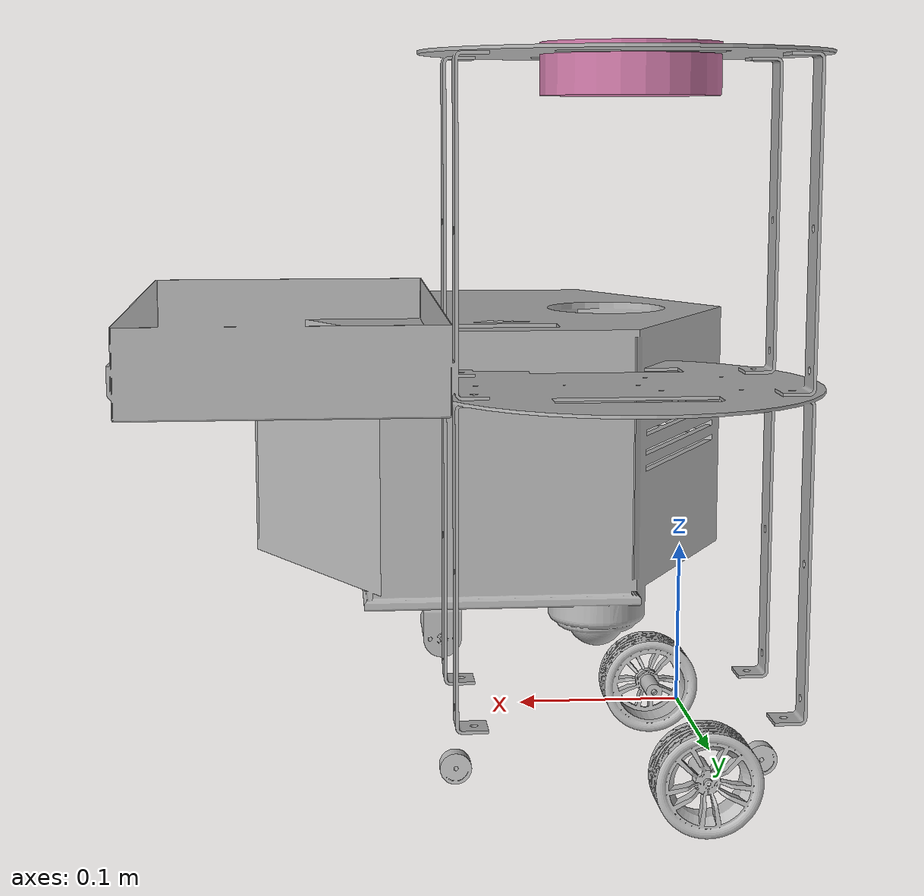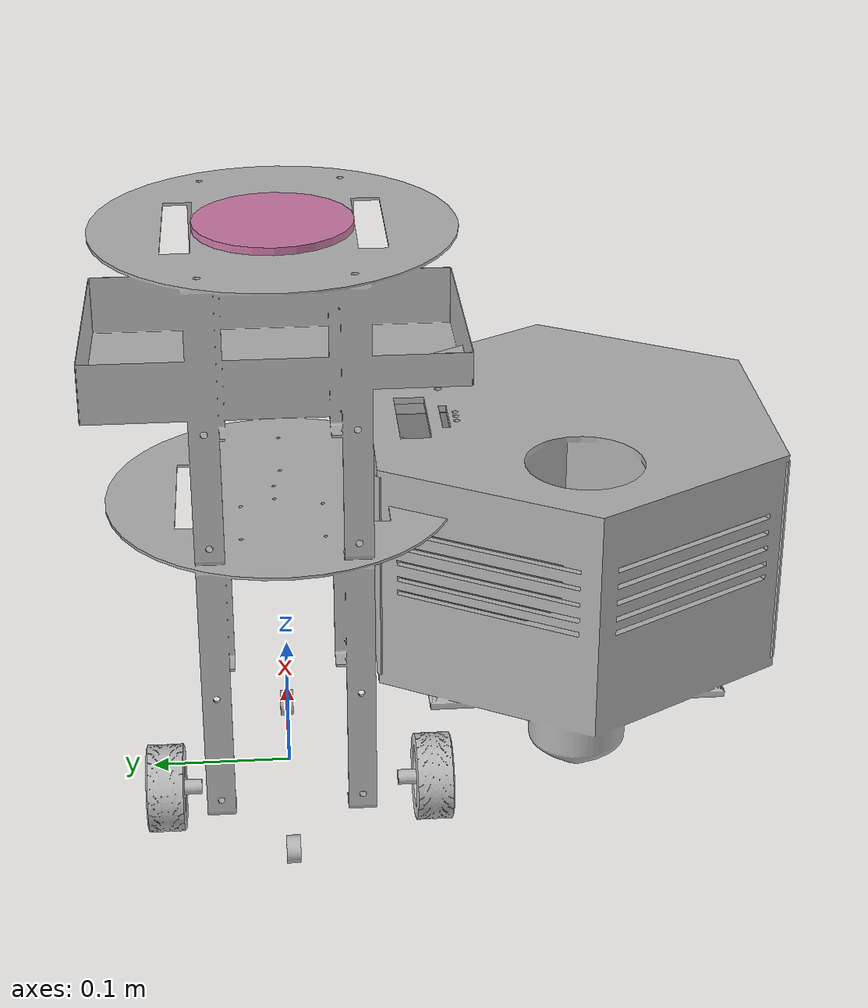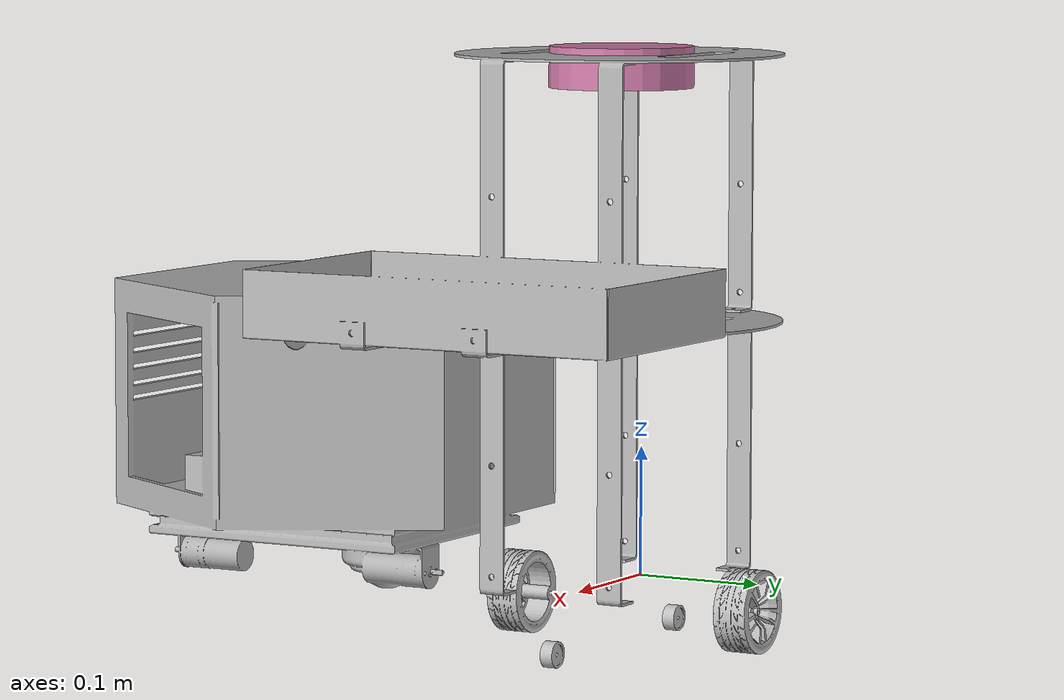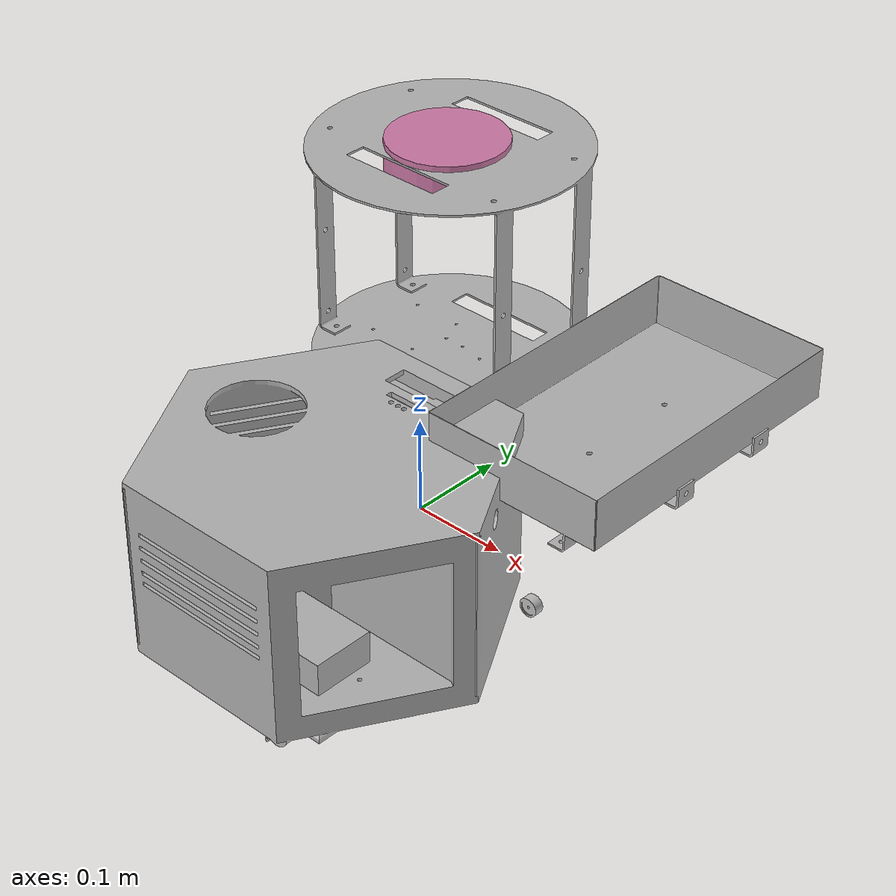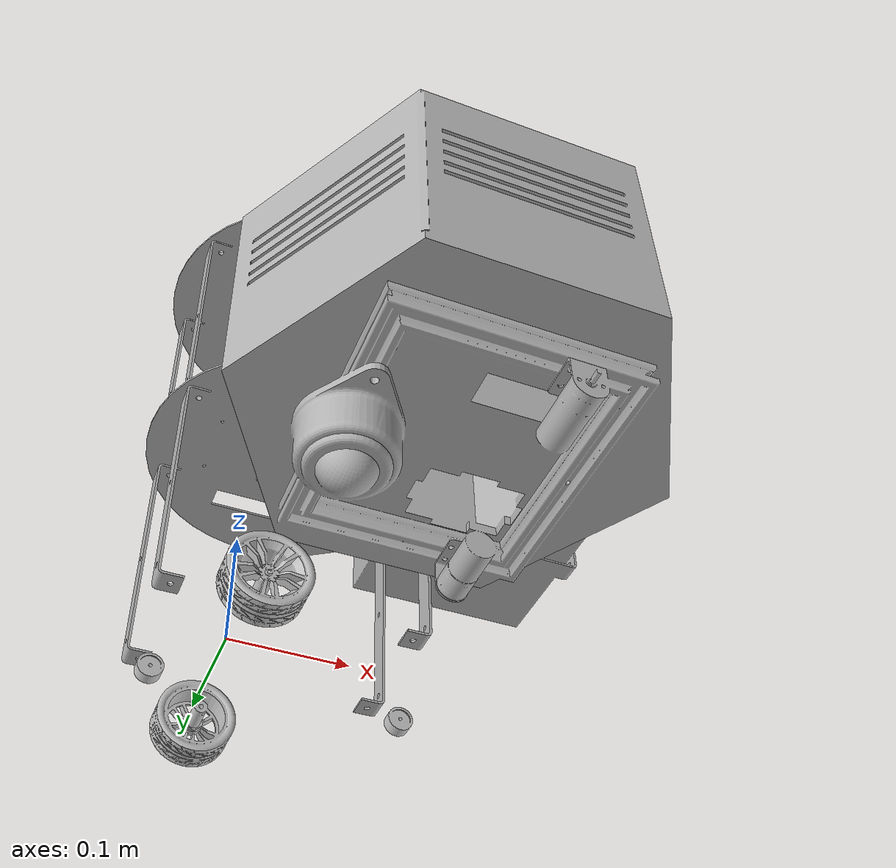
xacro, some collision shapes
<?xml version="1.0" encoding="utf-8"?>

<robot
  name="myrobot_description">
  <link name="base_footprint"/>

  <joint name="base_joint" type="fixed">
    <parent link="base_footprint"/>
    <child link="base_link" />
    <origin xyz="0 0 0" rpy="0 0 0"/>
  </joint>
  <link
    name="base_link">
    <inertial>
      <origin
        xyz="0.0334295656753822 -9.98187360504166E-07 -0.00708826574579158"
        rpy="0 0 0" />
      <mass
        value="0.291386250867534" />
      <inertia
        ixx="0.000561096027708634"
        ixy="2.07487063108338E-08"
        ixz="2.96610449303726E-08"
        iyy="0.000936386623588891"
        iyz="-7.59934502721681E-21"
        izz="0.00149018157993075" />
    </inertial>
    <visual>
      <origin
        xyz="0 0 0"
        rpy="0 0 0" />
      <geometry>
        <mesh
          filename="package://myrobot_description/meshes/base_link.STL" />
      </geometry>
      <material
        name="">
        <color
          rgba="0.701960784313725 0.701960784313725 0.701960784313725 1" />
      </material>
    </visual>
    <collision>
      <origin
        xyz="0 0 0"
        rpy="0 0 0" />
      <geometry>
        <mesh
          filename="package://myrobot_description/meshes/base_link.STL" />
      </geometry>
    </collision>
  </link>
  <link
    name="body_Link">
    <inertial>
      <origin
        xyz="-0.0630874271230967 0.0736985265673091 0.060000438932455"
        rpy="0 0 0" />
      <mass
        value="0.869617871932267" />
      <inertia
        ixx="0.00413505934928381"
        ixy="2.76470314368025E-08"
        ixz="3.18113667558966E-12"
        iyy="0.00608115551328237"
        iyz="3.0628626261311E-19"
        izz="0.00368816351469229" />
    </inertial>
    <visual>
      <origin
        xyz="0 0 0"
        rpy="0 0 0" />
      <geometry>
        <mesh
          filename="package://myrobot_description/meshes/body_Link.STL" />
      </geometry>
      <material
        name="">
        <color
          rgba="0.701960784313725 0.701960784313725 0.701960784313725 1" />
      </material>
    </visual>
    <collision>
      <origin
        xyz="0 0 0"
        rpy="0 0 0" />
      <geometry>
        <mesh
          filename="package://myrobot_description/meshes/body_Link.STL" />
      </geometry>
    </collision>
  </link>
  <joint
    name="Joint_body"
    type="fixed">
    <origin
      xyz="0.1455 0.06 0.18677"
      rpy="1.5708 0 0" />
    <parent
      link="base_link" />
    <child
      link="body_Link" />
    <axis
      xyz="0 0 0" />
  </joint>
  <link
    name="Left_Wheel_Link">
    <inertial>
      <origin
        xyz="-9.8451222946272E-07 0.000190069618619899 -1.72496767010533E-06"
        rpy="0 0 0" />
      <mass
        value="0.0467002891247963" />
      <inertia
        ixx="1.89558099168872E-05"
        ixy="-4.44065396532684E-10"
        ixz="1.52846648695377E-10"
        iyy="3.23738429415527E-05"
        iyz="-7.78075243601574E-10"
        izz="1.89559907001978E-05" />
    </inertial>
    <visual>
      <origin
        xyz="0 0 0"
        rpy="0 0 0" />
      <geometry>
        <mesh
          filename="package://myrobot_description/meshes/Left_Wheel_Link.STL" />
      </geometry>
      <material
        name="">
        <color
          rgba="0.749019607843137 0.749019607843137 0.749019607843137 1" />
      </material>
    </visual>
    <collision>
      <origin
        xyz="0 0 0"
        rpy="0 0 0" />
      <geometry>
        <mesh
          filename="package://myrobot_description/meshes/Left_Wheel_Link.STL" />
      </geometry>
    </collision>
  </link>
  <joint
    name="Left_Wheel_Joint"
    type="continuous">
    <origin
      xyz="0 0.0918 -0.0206"
      rpy="3.1416 1.2261 3.1416" />
    <parent
      link="base_link" />
    <child
      link="Left_Wheel_Link" />
    <axis
      xyz="0 1 0" />
  </joint>
  <link
    name="Right_Wheel_Link">
    <inertial>
      <origin
        xyz="-9.93226575499162E-07 0.0141900696186199 -1.71996475614722E-06"
        rpy="0 0 0" />
      <mass
        value="0.0467002891247965" />
      <inertia
        ixx="1.89558114680563E-05"
        ixy="-4.47996146890046E-10"
        ixz="1.53753430433206E-10"
        iyy="3.23738429415529E-05"
        iyz="-7.75818673045981E-10"
        izz="1.89559891490288E-05" />
    </inertial>
    <visual>
      <origin
        xyz="0 0 0"
        rpy="0 0 0" />
      <geometry>
        <mesh
          filename="package://myrobot_description/meshes/Right_Wheel_Link.STL" />
      </geometry>
      <material
        name="">
        <color
          rgba="0.749019607843137 0.749019607843137 0.749019607843137 1" />
      </material>
    </visual>
    <collision>
      <origin
        xyz="0 0 0"
        rpy="0 0 0" />
      <geometry>
        <mesh
          filename="package://myrobot_description/meshes/Right_Wheel_Link.STL" />
      </geometry>
    </collision>
  </link>
  <joint
    name="Right_Wheel_Joint"
    type="continuous">
    <origin
      xyz="0 -0.0918 -0.0206"
      rpy="3.1416 1.2312 0" />
    <parent
      link="base_link" />
    <child
      link="Right_Wheel_Link" />
    <axis
      xyz="0 -1 0" />
  </joint>
    <joint name="imu_joint" type="fixed">
    <parent link="base_link"/>
    <child link="imu_link"/>
    <origin xyz="0.0 0 0.2" rpy="0 0 0"/>
  </joint>

  <link name="imu_link"/>

  <joint name="scan_joint" type="fixed">
    <parent link="base_link"/>
    <child link="base_scan"/>
    <origin xyz="0.05 0 0.4" rpy="0 0 3.141592"/>
  </joint>

  <link name="base_scan">
    <visual>
      <origin xyz="0 0 0.0" rpy="0 0 0"/>
      <geometry>
        <mesh filename="package://myrobot_description/meshes/sensors/lds.stl" scale="0.001 0.001 0.001"/>
      </geometry>
      <material name="dark"/>
    </visual>

    <collision>
      <origin xyz="0.015 0 -0.0065" rpy="0 0 0"/>
      <geometry>
        <cylinder length="0.0315" radius="0.055"/>
      </geometry>
    </collision>

    <inertial>
      <mass value="0.114" />
      <origin xyz="0 0 0" />
      <inertia ixx="0.001" ixy="0.0" ixz="0.0"
               iyy="0.001" iyz="0.0"
               izz="0.001" />
    </inertial>
  </link>
<link
    name="Caster_Front_Link">
    <inertial>
      <origin
        xyz="0.005 0 5.20417042793042E-18"
        rpy="0 0 0" />
      <mass
        value="0.00268292012616568" />
      <inertia
        ixx="1.44148051919151E-07"
        ixy="-1.49182815273088E-23"
        ixz="5.26661052410402E-23"
        iyy="8.97758533650026E-08"
        iyz="-2.057115113939E-38"
        izz="8.97758533650027E-08" />
    </inertial>
    <visual>
      <origin
        xyz="0 0 0"
        rpy="0 0 0" />
      <geometry>
        <mesh
          filename="package://myrobot_description/meshes/Caster_Front_Link.STL" />
      </geometry>
      <material
        name="">
        <color
          rgba="0.749019607843137 0.749019607843137 0.749019607843137 1" />
      </material>
    </visual>
    <collision>
      <origin
        xyz="0 0 0"
        rpy="0 0 0" />
      <geometry>
        <mesh
          filename="package://myrobot_description/meshes/Caster_Front_Link.STL" />
      </geometry>
    </collision>
  </link>
  <joint
    name="Caster_Front_Joint"
    type="fixed">
    <origin
      xyz="-0.054785 0.005 -0.041"
      rpy="-1.5708 0 -1.5708" />
    <parent
      link="base_link" />
    <child
      link="Caster_Front_Link" />
    <axis
      xyz="0 0 0" />
  </joint>
  <link
    name="Caster_Back_Link">
    <inertial>
      <origin
        xyz="0.005 1.38777878078145E-17 2.77555756156289E-17"
        rpy="0 0 0" />
      <mass
        value="0.00268292012616568" />
      <inertia
        ixx="1.44148051919151E-07"
        ixy="-1.49634273646059E-23"
        ixz="6.13477843772715E-23"
        iyy="8.97758533650027E-08"
        iyz="-1.18167102263596E-38"
        izz="8.97758533650028E-08" />
    </inertial>
    <visual>
      <origin
        xyz="0 0 0"
        rpy="0 0 0" />
      <geometry>
        <mesh
          filename="package://myrobot_description/meshes/Caster_Back_Link.STL" />
      </geometry>
      <material
        name="">
        <color
          rgba="0.749019607843137 0.749019607843137 0.749019607843137 1" />
      </material>
    </visual>
    <collision>
      <origin
        xyz="0 0 0"
        rpy="0 0 0" />
      <geometry>
        <mesh
          filename="package://myrobot_description/meshes/Caster_Back_Link.STL" />
      </geometry>
    </collision>
  </link>
  <joint
    name="Caster_Back_Joint"
    type="fixed">
    <origin
      xyz="0.14122 0.005 -0.041"
      rpy="-1.5708 0 -1.5708" />
    <parent
      link="base_link" />
    <child
      link="Caster_Back_Link" />
    <axis
      xyz="0 0 0" />
  </joint>
</robot>
